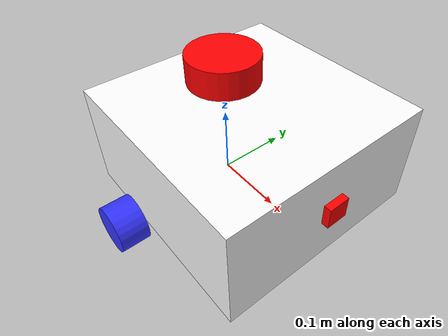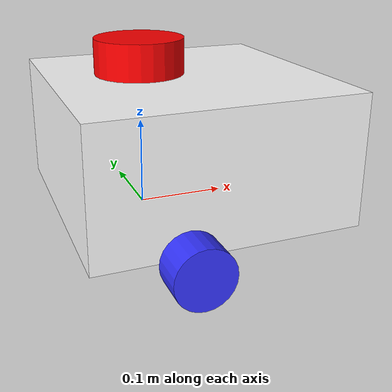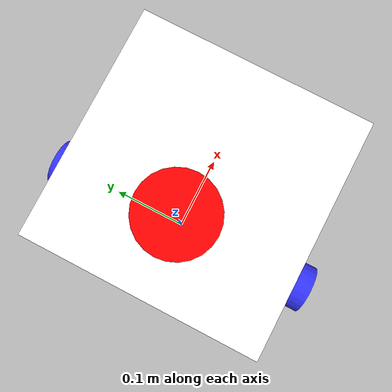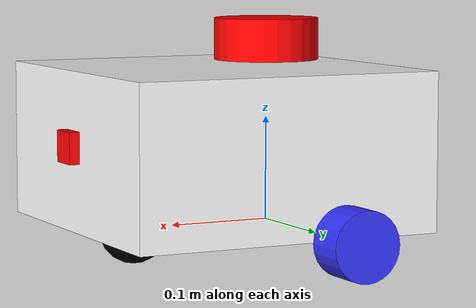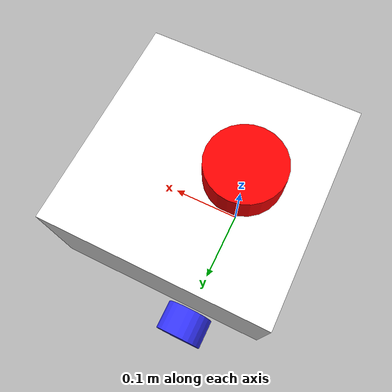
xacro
<?xml version="1.0"?>
<robot xmlns:xacro="http://www.ros.org/wiki/xacro" name="robot">

    <xacro:arg name="use_ros2_control" default="false"/>

    <xacro:include filename="robot_core.xacro" />

    <xacro:if value="$(arg use_ros2_control)">
        <xacro:include filename="ros2_control.xacro" />
    </xacro:if>
    <xacro:unless value="$(arg use_ros2_control)">
        <xacro:include filename="gazebo_control.xacro" />
    </xacro:unless>

    <xacro:include filename="lidar.xacro" />
    <xacro:include filename="camera.xacro" />

</robot>

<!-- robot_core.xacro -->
<robot xmlns:xacro="http://www.ros.org/wiki/xacro">

    <xacro:include filename="inertial_macros.xacro"/>

    <!-- Materials -->
    <material name="white">
        <color rgba="1 1 1 1" />
    </material>

    <material name="orange">
        <color rgba="1 0.3 0.1 1"/>
    </material>

    <material name="blue">
        <color rgba="0.2 0.2 1 1"/>
    </material>

    <material name="black">
        <color rgba="0 0 0 1"/>
    </material>

    <material name="red">
        <color rgba="1 0 0 1"/>
    </material>

    <!-- BASE LINK -->
    <link name="base_link">
    </link>

    <!-- BASE_FOOTPRINT LINK (Projection on the ground) -->
    <joint name="base_footprint_joint" type="fixed">
        <parent link="base_link"/>
        <child link="base_footprint"/>
        <origin xyz="0 0 0" rpy="0 0 0"/>
    </joint>

    <link name="base_footprint">
    </link>

    <!-- CHASSIS LINK -->
    <joint name="chassis_joint" type="fixed">
        <parent link="base_link"/>
        <child link="chassis"/>
        <origin xyz="-0.1 0 0"/>
    </joint>

    <link name="chassis">
        <visual>
            <origin xyz="0.15 0 0.075"/>
            <geometry>
                <box size="0.3 0.3 0.15"/>
            </geometry>
            <material name="white"/>
        </visual>
        <collision>
            <origin xyz="0.15 0 0.075"/>
            <geometry>
                <box size="0.3 0.3 0.15"/>
            </geometry>
        </collision>
        <xacro:inertial_box mass="0.5" x="0.3" y="0.3" z="0.15">
            <origin xyz="0.15 0 0.075" rpy="0 0 0"/>
        </xacro:inertial_box>
    </link>

    <gazebo reference="chassis">
        <material>Gazebo/White</material>
    </gazebo>

    <!-- LEFT WHEEL LINK -->
    <joint name="left_wheel_joint" type="continuous">
        <parent link="base_link"/>
        <child link="left_wheel"/>
        <origin xyz="0 0.175 0" rpy="-${pi/2} 0 0" />
        <axis xyz="0 0 1"/>
    </joint>

    <link name="left_wheel">
        <visual>
            <geometry>
                <cylinder radius="0.033" length="0.04"/>
            </geometry>
            <material name="blue"/>
        </visual>
        <collision>
            <geometry>
                <sphere radius="0.033"/>
            </geometry>
        </collision>
        <xacro:inertial_cylinder mass="0.1" length="0.04" radius="0.033">
            <origin xyz="0 0 0" rpy="0 0 0"/>
        </xacro:inertial_cylinder>
    </link>

    <gazebo reference="left_wheel">
        <material>Gazebo/Blue</material>
    </gazebo>

    <!-- RIGHT WHEEL LINK -->
    <joint name="right_wheel_joint" type="continuous">
        <parent link="base_link"/>
        <child link="right_wheel"/>
        <origin xyz="0 -0.175 0" rpy="${pi/2} 0 0" />
        <axis xyz="0 0 -1"/>
    </joint>

    <link name="right_wheel">
        <visual>
            <geometry>
                <cylinder radius="0.033" length="0.04"/>
            </geometry>
            <material name="blue"/>
        </visual>
        <collision>
            <geometry>
                <sphere radius="0.033"/>
            </geometry>
        </collision>
        <xacro:inertial_cylinder mass="0.1" length="0.04" radius="0.033">
            <origin xyz="0 0 0" rpy="0 0 0"/>
        </xacro:inertial_cylinder>
    </link>

    <gazebo reference="right_wheel">
        <material>Gazebo/Blue</material>
    </gazebo>

    <!-- CASTER WHEEL LINK -->
    <joint name="caster_wheel_joint" type="fixed">
        <parent link="chassis"/>
        <child link="caster_wheel"/>
        <origin xyz="0.24 0 0"/>
    </joint>

    <link name="caster_wheel">
        <visual>
            <geometry>
                <sphere radius="0.033"/>
            </geometry>
            <material name="black"/>
        </visual>
        <collision>
            <geometry>
                <sphere radius="0.033"/>
            </geometry>
        </collision>
        <xacro:inertial_sphere mass="0.1" radius="0.033">
            <origin xyz="0 0 0" rpy="0 0 0"/>
        </xacro:inertial_sphere>
    </link>

    <gazebo reference="caster_wheel">
        <material>Gazebo/Black</material>
        <mu1 value="0.001"/>
        <mu2 value="0.001"/>
    </gazebo>

</robot>

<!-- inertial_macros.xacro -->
<robot xmlns:xacro="http://www.ros.org/wiki/xacro">

    <!-- Specify variable for PI -->
    <xacro:property name="pi_const" value="3.1415926535897931" />

    <xacro:macro name="inertial_sphere" params="mass radius *origin">
        <inertial>
            <xacro:insert_block name="origin"/>
            <mass value="${mass}" />
            <inertia ixx="${(2/5) * mass * (radius*radius)}" ixy="0.0" ixz="0.0"
                    iyy="${(2/5) * mass * (radius*radius)}" iyz="0.0"
                    izz="${(2/5) * mass * (radius*radius)}" />
        </inertial>
    </xacro:macro>

    <xacro:macro name="inertial_box" params="mass x y z *origin">
        <inertial>
            <xacro:insert_block name="origin"/>
            <mass value="${mass}" />
            <inertia ixx="${(1/12) * mass * (y*y + z*z)}" ixy="0.0" ixz="0.0"
                    iyy="${(1/12) * mass * (x*x + z*z)}" iyz="0.0"
                    izz="${(1/12) * mass * (x*x + y*y)}" />
        </inertial>
    </xacro:macro>

    <xacro:macro name="inertial_cylinder" params="mass length radius *origin">
        <inertial>
            <xacro:insert_block name="origin"/>
            <mass value="${mass}" />
            <inertia ixx="${(1/12) * mass * (3*radius*radius + length*length)}" ixy="0.0" ixz="0.0"
                    iyy="${(1/12) * mass * (3*radius*radius + length*length)}" iyz="0.0"
                    izz="${(1/2) * mass * (radius*radius)}" />
        </inertial>
    </xacro:macro>

</robot>

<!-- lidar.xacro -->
<robot xmlns:xacro="http://www.ros.org/wiki/xacro">

    <joint name="laser_joint" type="fixed">
        <parent link="chassis"/>
        <child link="laser_frame"/>
        <origin xyz="0.1 0 0.175" rpy="0 0 0"/>
    </joint>

    <link name="laser_frame">
        <visual>
            <geometry>
                <cylinder radius="0.05" length="0.04"/>
            </geometry>
            <material name="red"/>
        </visual>
        <collision>
            <geometry>
                <cylinder radius="0.05" length="0.04"/>
            </geometry>
        </collision>
        <xacro:inertial_cylinder mass="0.1" length="0.04" radius="0.05">
            <origin xyz="0 0 0" rpy="0 0 0"/>
        </xacro:inertial_cylinder>
    </link>

    <gazebo reference="laser_frame">
        <material>Gazebo/Red</material>

        <sensor name="laser" type="ray">
            <pose> 0 0 0 0 0 0 </pose>
            <visualize>false</visualize>
            <update_rate>10</update_rate>
            <ray>
                <scan>
                    <horizontal>
                        <samples>360</samples>
                        <min_angle>-3.14</min_angle>
                        <max_angle>3.14</max_angle>
                    </horizontal>
                </scan>
                <range>
                    <min>0.3</min>
                    <max>12</max>
                </range>
            </ray>
            <plugin name="laser_controller" filename="libgazebo_ros_ray_sensor.so">
                <ros>
                    <argument>~/out:=scan</argument>
                </ros>
                <output_type>sensor_msgs/LaserScan</output_type>
                <frame_name>laser_frame</frame_name>
            </plugin>
        </sensor>
    </gazebo>

</robot>

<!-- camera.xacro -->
<robot xmlns:xacro="http://www.ros.org/wiki/xacro">

    <joint name="camera_joint" type="fixed">
        <parent link="chassis"/>
        <child link="camera_link"/>
        <origin xyz="0.305 0 0.08" rpy="0 0 0"/>
    </joint>

    <link name="camera_link">
        <visual>
            <geometry>
                <box size="0.010 0.03 0.03"/>
            </geometry>
            <material name="red"/>
        </visual>
    </link>

    <joint name="camera_optical_joint" type="fixed">
        <parent link="camera_link"/>
        <child link="camera_link_optical"/>
        <origin xyz="0 0 0" rpy="${-pi/2} 0 ${-pi/2}"/>
    </joint>

    <link name="camera_link_optical"></link>

    <gazebo reference="camera_link">
        <material>Gazebo/Red</material>

        <sensor name="camera" type="camera">
            <pose> 0 0 0 0 0 0 </pose>
            <visualize>true</visualize>
            <update_rate>10</update_rate>
            <camera>
                <horizontal_fov>1.089</horizontal_fov>
                <image>
                    <format>R8G8B8</format>
                    <width>640</width>
                    <height>480</height>
                </image>
                <clip>
                    <near>0.05</near>
                    <far>8.0</far>
                </clip>
            </camera>
            <plugin name="camera_controller" filename="libgazebo_ros_camera.so">
                <frame_name>camera_link_optical</frame_name>
            </plugin>
        </sensor>
    </gazebo>

</robot>
